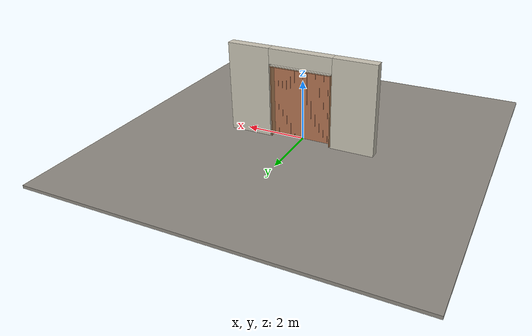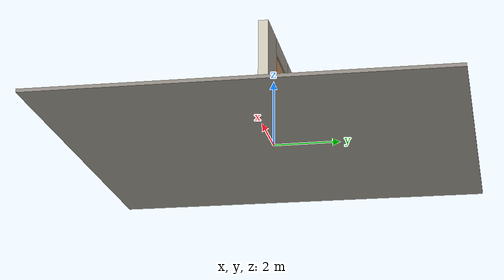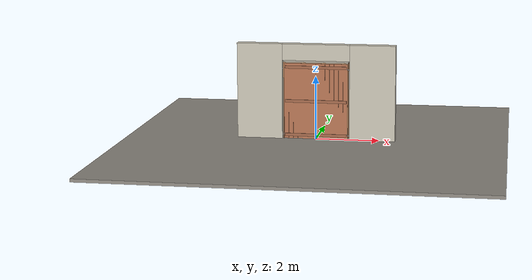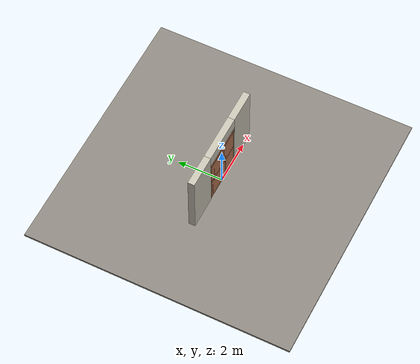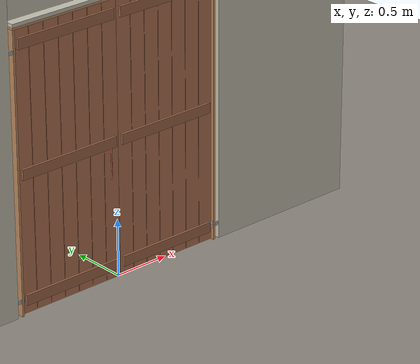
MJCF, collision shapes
<?xml version="1.0" ?>
<mujoco model="db0467_swing_double_full">
  <compiler angle="radian" meshdir="../../hardware" texturedir="../../textures" autolimits="true" inertiafromgeom="false"/>
  <option timestep="0.002" integrator="implicitfast" cone="elliptic" impratio="10" noslip_iterations="3">
    <flag multiccd="enable"/>
  </option>
  <size memory="16M"/>
  <default>
    <geom condim="4" solref="0.005 1" solimp="0.95 0.99 0.001"/>
    <joint solreflimit="0.005 1" solimplimit="0.95 0.99 0.001"/>
    <tendon solreflimit="0.005 1"/>
    <equality solref="0.002 1"/>
  </default>
  <visual>
    <headlight ambient="0.4 0.4 0.4" diffuse="0.7 0.7 0.7" specular="0.2 0.2 0.2"/>
    <quality shadowsize="4096"/>
    <map znear="0.01" zfar="60"/>
  </visual>
  <asset>
    <mesh name="pull_2b47e55ff8" file="pull_2b47e55ff8.obj"/>
    <mesh name="strap_hinge_118b895b75" file="strap_hinge_118b895b75.obj"/>
    <material name="mat_floor" rgba="0.55 0.53 0.5 1" specular="0.2" shininess="0.15" reflectance="0"/>
    <material name="mat_wall" rgba="0.78 0.76 0.7 1" specular="0.2" shininess="0.1" reflectance="0"/>
    <material name="mat_leaf_a" rgba="0.7 0.45 0.32 1" specular="0.2" shininess="0.4" reflectance="0"/>
    <material name="mat_leaf_a_brace" rgba="0.63 0.405 0.288 1" specular="0.2" shininess="0.2" reflectance="0"/>
    <material name="mat_hinge" rgba="0.65 0.66 0.68 1" specular="0.74" shininess="0.5" reflectance="0.36"/>
    <material name="mat_op_black_matte_metal" rgba="0.05 0.05 0.05 1" specular="0.38" shininess="0.3" reflectance="0.12"/>
    <material name="mat_leaf_b" rgba="0.7 0.45 0.32 1" specular="0.2" shininess="0.4" reflectance="0"/>
    <material name="mat_leaf_b_brace" rgba="0.63 0.405 0.288 1" specular="0.2" shininess="0.2" reflectance="0"/>
    <material name="mat_frame" rgba="0.75 0.55 0.38 1" specular="0.2" shininess="0.45" reflectance="0"/>
    <texture name="skybox" type="skybox" builtin="gradient" rgb1="0.6 0.7 0.85" rgb2="0.9 0.92 0.95" width="256" height="256"/>
  </asset>
  <worldbody>
    <light name="sun" pos="1.5 -2.5 4" dir="-0.3 0.5 -0.8" directional="true" diffuse="0.8 0.8 0.8" specular="0.3 0.3 0.3" castshadow="true"/>
    <light name="fill" pos="-1.5 2.5 3" dir="0.3 -0.5 -0.7" directional="true" diffuse="0.35 0.35 0.4" castshadow="false"/>
    <camera name="robot_view" pos="0 -2.779187 2.014912" xyaxes="1 0 0 0 0.26963 0.962964" fovy="52"/>
    <camera name="far_view" pos="0 2.995187 2.014912" xyaxes="-1 0 0 0 -0.26963 0.962964" fovy="52"/>
    <camera name="iso" pos="-2.194262 -2.317237 2.476863" xyaxes="0.741536 -0.670913 0 0.242917 0.268487 0.932151" fovy="46"/>
    <camera name="detail_handle" pos="0.0735 -0.867 1.33" xyaxes="0.97561 0.219512 0 -0.070934 0.315262 0.94635" fovy="38"/>
    <geom name="floor" type="box" size="6 6 0.05" pos="0 0 -0.05" material="mat_floor" group="0" contype="1" conaffinity="1" friction="0.8 0.005 0.0001" density="2400"/>
    <geom name="wall_left" type="box" size="0.71775 0.15 1.5065" pos="-1.78225 0.108 1.5065" material="mat_wall" group="0" contype="1" conaffinity="1" friction="0.6 0.005 0.0001" density="800"/>
    <geom name="wall_right" type="box" size="0.71775 0.15 1.5065" pos="1.78225 0.108 1.5065" material="mat_wall" group="0" contype="1" conaffinity="1" friction="0.6 0.005 0.0001" density="800"/>
    <geom name="wall_header" type="box" size="1.0645 0.15 0.255" pos="0 0.108 2.758" material="mat_wall" group="0" contype="1" conaffinity="1" friction="0.6 0.005 0.0001" density="800"/>
    <geom name="hinge_pintle_0" type="cylinder" size="0.008 0.02" pos="-1.0015 -0.029 0.133" material="mat_hinge" group="1" contype="0" conaffinity="0" density="7850"/>
    <geom name="hinge_pintle_1" type="cylinder" size="0.008 0.02" pos="-1.0015 -0.029 2.233" material="mat_hinge" group="1" contype="0" conaffinity="0" density="7850"/>
    <geom name="hinge_pintle_0_2" type="cylinder" size="0.008 0.02" pos="1.0015 -0.029 0.133" material="mat_hinge" group="1" contype="0" conaffinity="0" density="7850"/>
    <geom name="hinge_pintle_1_2" type="cylinder" size="0.008 0.02" pos="1.0015 -0.029 2.233" material="mat_hinge" group="1" contype="0" conaffinity="0" density="7850"/>
    <geom name="jamb_l" type="box" size="0.0095 0.15 1.2065" pos="-1.014 0.108 1.2065" material="mat_frame" group="0" contype="1" conaffinity="1" friction="0.6 0.005 0.0001" density="300"/>
    <geom name="jamb_r" type="box" size="0.0095 0.15 1.2065" pos="1.014 0.108 1.2065" material="mat_frame" group="0" contype="1" conaffinity="1" friction="0.6 0.005 0.0001" density="300"/>
    <geom name="jamb_head" type="box" size="1.0235 0.15 0.0095" pos="0 0.108 2.4225" material="mat_frame" group="0" contype="1" conaffinity="1" friction="0.6 0.005 0.0001" density="300"/>
    <geom name="head_stud" type="box" size="1.0235 0.15 0.015" pos="0 0.108 2.447" material="mat_wall" group="0" contype="1" conaffinity="1" friction="0.6 0.005 0.0001" density="500"/>
    <geom name="hinge_pintle_0_strap_0" type="box" size="0.028 0.0064 0.016" pos="-1.037 -0.029 0.133" material="mat_hinge" group="1" contype="0" conaffinity="0" density="7850"/>
    <geom name="hinge_pintle_0_strap_1" type="box" size="0.028 0.0064 0.016" pos="1.037 -0.029 0.133" material="mat_hinge" group="1" contype="0" conaffinity="0" density="7850"/>
    <geom name="hinge_pintle_1_strap_0" type="box" size="0.028 0.0064 0.016" pos="-1.037 -0.029 2.233" material="mat_hinge" group="1" contype="0" conaffinity="0" density="7850"/>
    <geom name="hinge_pintle_1_strap_1" type="box" size="0.028 0.0064 0.016" pos="1.037 -0.029 2.233" material="mat_hinge" group="1" contype="0" conaffinity="0" density="7850"/>
    <site name="approach_point" pos="0 -1.5 0" quat="1 0 0 0" size="0.05" rgba="0.2 0.9 0.2 0.5" group="4"/>
    <site name="goal_point" pos="0 1.5 0" quat="1 0 0 0" size="0.05" rgba="0.2 0.9 0.2 0.5" group="4"/>
    <site name="door_plane_center" pos="0 0 1.2065" quat="1 0 0 0" size="0.02" rgba="0.2 0.9 0.2 0.5" group="4"/>
    <site name="approach_point_2" pos="0 -1.5 0" quat="1 0 0 0" size="0.05" rgba="0.2 0.9 0.2 0.5" group="4"/>
    <site name="goal_point_2" pos="0 1.5 0" quat="1 0 0 0" size="0.05" rgba="0.2 0.9 0.2 0.5" group="4"/>
    <site name="door_plane_center_2" pos="0 0 1.2065" quat="1 0 0 0" size="0.02" rgba="0.2 0.9 0.2 0.5" group="4"/>
    <site name="approach_point_3" pos="0 -1.5 0" quat="1 0 0 0" size="0.05" rgba="0.2 0.9 0.2 0.5" group="4"/>
    <site name="goal_point_3" pos="0 1.5 0" quat="1 0 0 0" size="0.05" rgba="0.2 0.9 0.2 0.5" group="4"/>
    <site name="door_plane_center_3" pos="0 0 1.2065" quat="1 0 0 0" size="0.02" rgba="0.2 0.9 0.2 0.5" group="4"/>
    <body name="leaf_a" pos="-1.0045 0 0">
      <inertial pos="0.484893 -0.002786 1.205318" mass="39.041292" quat="0.502714 0.498955 0.501042 -0.497273" diaginertia="3.335242432 21.042669673 24.35567674"/>
      <joint name="leaf_a_hinge" type="hinge" axis="0 0 -1" pos="0.003 -0.029 0" limited="true" range="0 1.396263" damping="0.48344" frictionloss="10.213386" armature="0.02"/>
      <geom name="leaf_a_slab" type="box" size="0.5 0.022 1.2" pos="0.503 0 1.209" material="mat_leaf_a" group="0" contype="1" conaffinity="1" friction="0.35 0.005 0.0001" density="1"/>
      <geom name="leaf_a_plank_gap_1" type="box" size="0.002 0.023 1.19" pos="0.145857 0 1.209" material="mat_leaf_a_brace" group="1" contype="0" conaffinity="0" density="1"/>
      <geom name="leaf_a_plank_gap_2" type="box" size="0.002 0.023 1.19" pos="0.288714 0 1.209" material="mat_leaf_a_brace" group="1" contype="0" conaffinity="0" density="1"/>
      <geom name="leaf_a_plank_gap_3" type="box" size="0.002 0.023 1.19" pos="0.431571 0 1.209" material="mat_leaf_a_brace" group="1" contype="0" conaffinity="0" density="1"/>
      <geom name="leaf_a_plank_gap_4" type="box" size="0.002 0.023 1.19" pos="0.574429 0 1.209" material="mat_leaf_a_brace" group="1" contype="0" conaffinity="0" density="1"/>
      <geom name="leaf_a_plank_gap_5" type="box" size="0.002 0.023 1.19" pos="0.717286 0 1.209" material="mat_leaf_a_brace" group="1" contype="0" conaffinity="0" density="1"/>
      <geom name="leaf_a_plank_gap_6" type="box" size="0.002 0.023 1.19" pos="0.860143 0 1.209" material="mat_leaf_a_brace" group="1" contype="0" conaffinity="0" density="1"/>
      <geom name="leaf_a_batten_12" type="box" size="0.47 0.01 0.045" pos="0.503 -0.032 0.129" material="mat_leaf_a_brace" group="1" contype="0" conaffinity="0" density="1"/>
      <geom name="leaf_a_batten_228" type="box" size="0.47 0.01 0.045" pos="0.503 -0.032 2.289" material="mat_leaf_a_brace" group="1" contype="0" conaffinity="0" density="1"/>
      <geom name="leaf_a_batten_120" type="box" size="0.47 0.01 0.045" pos="0.503 -0.032 1.209" material="mat_leaf_a_brace" group="1" contype="0" conaffinity="0" density="1"/>
      <geom name="hinge_strap_0" type="mesh" mesh="strap_hinge_118b895b75" pos="0.003 -0.025 0.159" material="mat_hinge" group="1" contype="0" conaffinity="0" density="7850"/>
      <geom name="hinge_strap_eye_0" type="cylinder" size="0.011 0.012" pos="0.003 -0.029 0.159" material="mat_hinge" group="1" contype="0" conaffinity="0" density="7850"/>
      <geom name="hinge_strap_neck_0" type="box" size="0.012 0.006 0.006" pos="0.003 -0.027 0.159" material="mat_hinge" group="1" contype="0" conaffinity="0" density="7850"/>
      <geom name="hinge_strap_1" type="mesh" mesh="strap_hinge_118b895b75" pos="0.003 -0.025 2.259" material="mat_hinge" group="1" contype="0" conaffinity="0" density="7850"/>
      <geom name="hinge_strap_eye_1" type="cylinder" size="0.011 0.012" pos="0.003 -0.029 2.259" material="mat_hinge" group="1" contype="0" conaffinity="0" density="7850"/>
      <geom name="hinge_strap_neck_1" type="box" size="0.012 0.006 0.006" pos="0.003 -0.027 2.259" material="mat_hinge" group="1" contype="0" conaffinity="0" density="7850"/>
      <geom name="leaf_a_pull_n" type="mesh" mesh="pull_2b47e55ff8" pos="0.898 -0.022 1.05" quat="0.707107 0.707107 0 0" material="mat_op_black_matte_metal" group="1" contype="0" conaffinity="0" density="3000"/>
      <geom name="leaf_a_pull_col_n" type="capsule" size="0.006 0.13" pos="0.898 -0.067 1.05" material="mat_op_black_matte_metal" group="3" contype="1" conaffinity="1" rgba="0.8 0.3 0.3 0.25" friction="0.7 0.01 0.0001" density="3000"/>
      <geom name="leaf_a_pull_p" type="mesh" mesh="pull_2b47e55ff8" pos="0.898 0.022 1.05" quat="-0.707107 0.707107 0 0" material="mat_op_black_matte_metal" group="1" contype="0" conaffinity="0" density="3000"/>
      <geom name="leaf_a_pull_col_p" type="capsule" size="0.006 0.13" pos="0.898 0.067 1.05" material="mat_op_black_matte_metal" group="3" contype="1" conaffinity="1" rgba="0.8 0.3 0.3 0.25" friction="0.7 0.01 0.0001" density="3000"/>
      <site name="leaf_a_pull_grip_n" pos="0.898 -0.067 1.05" quat="1 0 0 0" size="0.012" rgba="0.2 0.9 0.2 0.5" group="4"/>
      <site name="leaf_a_pull_grip_p" pos="0.898 0.067 1.05" quat="1 0 0 0" size="0.012" rgba="0.2 0.9 0.2 0.5" group="4"/>
      <site name="leaf_a_edge_mid" pos="1.003 0 1.2" quat="1 0 0 0" size="0.02" rgba="0.2 0.9 0.2 0.5" group="4"/>
    </body>
    <body name="leaf_b" pos="1.0045 0 0">
      <inertial pos="-0.4751 -0.002852 1.209" mass="38.928708" quat="0.501886 0.498106 -0.501886 0.498106" diaginertia="3.239980904 21.443274933 24.667341145"/>
      <joint name="leaf_b_hinge" type="hinge" axis="0 0 1" pos="-0.003 -0.029 0" limited="true" range="0 0.001" damping="0.48344" frictionloss="10.213386" armature="0.02"/>
      <geom name="leaf_b_slab" type="box" size="0.5 0.022 1.2" pos="-0.503 0 1.209" material="mat_leaf_b" group="0" contype="1" conaffinity="1" friction="0.35 0.005 0.0001" density="1"/>
      <geom name="leaf_b_plank_gap_1" type="box" size="0.002 0.023 1.19" pos="-0.145857 0 1.209" material="mat_leaf_b_brace" group="1" contype="0" conaffinity="0" density="1"/>
      <geom name="leaf_b_plank_gap_2" type="box" size="0.002 0.023 1.19" pos="-0.288714 0 1.209" material="mat_leaf_b_brace" group="1" contype="0" conaffinity="0" density="1"/>
      <geom name="leaf_b_plank_gap_3" type="box" size="0.002 0.023 1.19" pos="-0.431571 0 1.209" material="mat_leaf_b_brace" group="1" contype="0" conaffinity="0" density="1"/>
      <geom name="leaf_b_plank_gap_4" type="box" size="0.002 0.023 1.19" pos="-0.574429 0 1.209" material="mat_leaf_b_brace" group="1" contype="0" conaffinity="0" density="1"/>
      <geom name="leaf_b_plank_gap_5" type="box" size="0.002 0.023 1.19" pos="-0.717286 0 1.209" material="mat_leaf_b_brace" group="1" contype="0" conaffinity="0" density="1"/>
      <geom name="leaf_b_plank_gap_6" type="box" size="0.002 0.023 1.19" pos="-0.860143 0 1.209" material="mat_leaf_b_brace" group="1" contype="0" conaffinity="0" density="1"/>
      <geom name="leaf_b_batten_12" type="box" size="0.47 0.01 0.045" pos="-0.503 -0.032 0.129" material="mat_leaf_b_brace" group="1" contype="0" conaffinity="0" density="1"/>
      <geom name="leaf_b_batten_228" type="box" size="0.47 0.01 0.045" pos="-0.503 -0.032 2.289" material="mat_leaf_b_brace" group="1" contype="0" conaffinity="0" density="1"/>
      <geom name="leaf_b_batten_120" type="box" size="0.47 0.01 0.045" pos="-0.503 -0.032 1.209" material="mat_leaf_b_brace" group="1" contype="0" conaffinity="0" density="1"/>
      <geom name="hinge_strap_0_2" type="mesh" mesh="strap_hinge_118b895b75" pos="-0.003 -0.025 0.159" quat="0 0 0 1" material="mat_hinge" group="1" contype="0" conaffinity="0" density="7850"/>
      <geom name="hinge_strap_eye_0_2" type="cylinder" size="0.011 0.012" pos="-0.003 -0.029 0.159" material="mat_hinge" group="1" contype="0" conaffinity="0" density="7850"/>
      <geom name="hinge_strap_neck_0_2" type="box" size="0.012 0.006 0.006" pos="-0.003 -0.027 0.159" material="mat_hinge" group="1" contype="0" conaffinity="0" density="7850"/>
      <geom name="hinge_strap_1_2" type="mesh" mesh="strap_hinge_118b895b75" pos="-0.003 -0.025 2.259" quat="0 0 0 1" material="mat_hinge" group="1" contype="0" conaffinity="0" density="7850"/>
      <geom name="hinge_strap_eye_1_2" type="cylinder" size="0.011 0.012" pos="-0.003 -0.029 2.259" material="mat_hinge" group="1" contype="0" conaffinity="0" density="7850"/>
      <geom name="hinge_strap_neck_1_2" type="box" size="0.012 0.006 0.006" pos="-0.003 -0.027 2.259" material="mat_hinge" group="1" contype="0" conaffinity="0" density="7850"/>
      <site name="leaf_b_edge_mid" pos="-1.003 0 1.2" quat="1 0 0 0" size="0.02" rgba="0.2 0.9 0.2 0.5" group="4"/>
    </body>
  </worldbody>
  <sensor>
    <jointpos name="leaf_a_hinge_pos" joint="leaf_a_hinge"/>
    <jointvel name="leaf_a_hinge_vel" joint="leaf_a_hinge"/>
    <jointpos name="leaf_b_hinge_pos" joint="leaf_b_hinge"/>
    <jointvel name="leaf_b_hinge_vel" joint="leaf_b_hinge"/>
  </sensor>
</mujoco>
